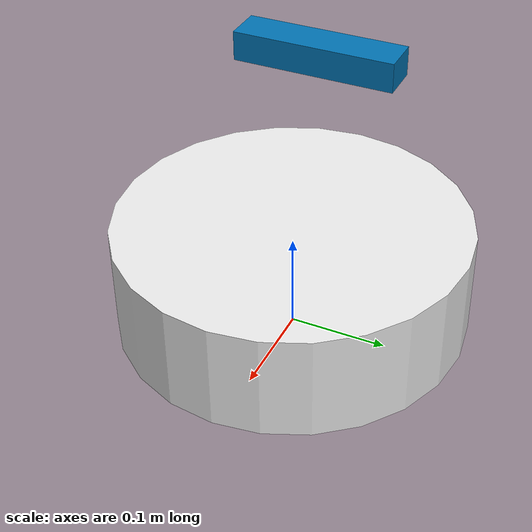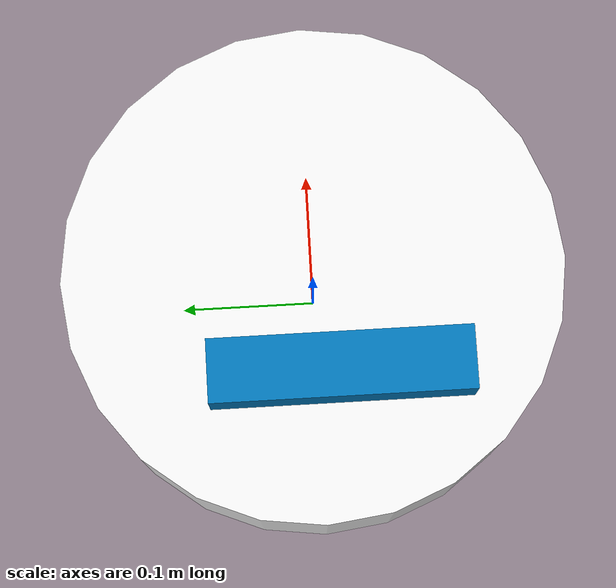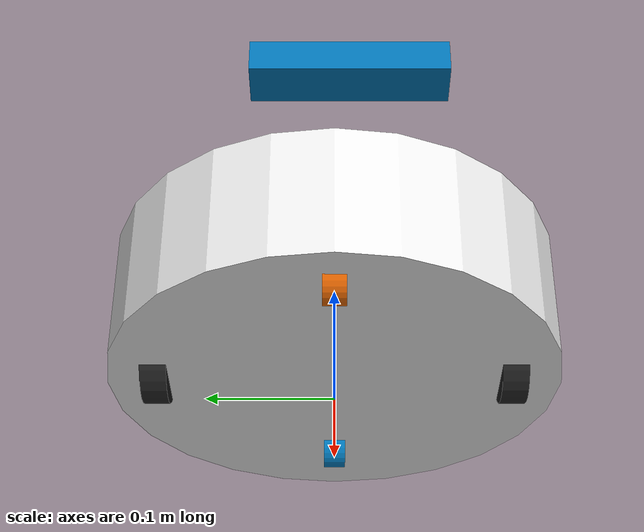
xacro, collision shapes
<?xml version="1.0"?>

<robot name="chefbot" xmlns:xacro="http://ros.org/wiki/xacro">

  <xacro:include filename="$(find chefbot_description)/urdf/common_properties.xacro" />
  <xacro:include filename="$(find chefbot_description)/gazebo/chefbot.gazebo.xacro" />

  <xacro:property name="astra_cam_py" value="-0.0125"/>
  <xacro:property name="astra_depth_rel_rgb_py" value="0.0250" />
  <xacro:property name="astra_cam_rel_rgb_py"   value="-0.0125" />
  <xacro:property name="astra_dae_display_scale"   value="0.8" />

<!-- Defining the fixed base link of the robot -->

<link name="base_footprint"/>

    <joint name="base_joint" type="fixed">
      <origin xyz="0 0 0.0102" rpy="0 0 0" />
      <parent link="base_footprint"/>
      <child link="base_link" />
    </joint>
    <link name="base_link">
      <visual>
        <geometry>
          <!-- new mesh -->
          <mesh filename="package://chefbot_description/meshes/base_plate.dae" />
       <material name="white"/>
        </geometry>

	 <origin xyz="0.001 0 -0.034" rpy="0 0 ${M_PI/2}"/>
      </visual>
      <collision>
        <geometry>
          <cylinder length="0.10938" radius="0.178"/>
        </geometry>
        <origin xyz="0.0 0 0.05949" rpy="0 0 0"/>
      </collision>
      <inertial>
        <!-- COM experimentally determined -->
        <origin xyz="0.01 0 0"/>
        <mass value="2.4"/> <!-- 2.4/2.6 kg for small/big battery pack -->

        <inertia ixx="0.019995" ixy="0.0" ixz="0.0"
                 iyy="0.019995" iyz="0.0"
                 izz="0.03675" />
      </inertial>
    </link>

    <joint name="wheel_left_joint" type="continuous">
      <parent link="base_link"/>
      <child link="chefbot_wheel_left_link"/>
      <origin xyz="0 ${0.28/2} 0.026" rpy="${-M_PI/2} 0 0"/>
      <axis xyz="0 0 1"/>
    </joint>
    <link name="chefbot_wheel_left_link">
      <visual>
        <geometry>
          <mesh filename="package://chefbot_description/meshes/wheel.dae"/>
       <material name="black"/>
        </geometry>
        <origin xyz="0 0 0" rpy="0 0 0"/>
      </visual>
      <collision>
        <geometry>
          <cylinder length="0.0206" radius="0.0352"/>
        </geometry>
        <origin rpy="0 0 0" xyz="0 0 0"/>
      </collision>
      <inertial>
        <mass value="0.01" />
        <origin xyz="0 0 0" />
        <inertia ixx="0.001" ixy="0.0" ixz="0.0"
                 iyy="0.001" iyz="0.0"
                 izz="0.001" />
      </inertial>
    </link>

    <joint name="wheel_right_joint" type="continuous">
      <parent link="base_link"/>
      <child link="chefbot_wheel_right_link"/>
      <origin xyz="0.00 -${0.28/2} 0.026" rpy="${-M_PI/2} 0 0"/>
      <axis xyz="0 0 1"/>
    </joint>
    <link name="chefbot_wheel_right_link">
      <visual>
        <geometry>
          <mesh filename="package://chefbot_description/meshes/wheel.dae"/>
       	<material name="white"/>
        </geometry>
        <origin xyz="0 0 0" rpy="0 0 0"/>
      </visual>
      <collision>
        <geometry>
          <cylinder length="0.0206" radius="0.0350"/>
        </geometry>
        <origin rpy="0 0 0" xyz="0 0 0"/>
      </collision>
      <inertial>
        <mass value="0.01" />
        <origin xyz="0 0 0" />
        <inertia ixx="0.001" ixy="0.0" ixz="0.0"
                 iyy="0.001" iyz="0.0"
                 izz="0.001" />
      </inertial>
    </link>

    <joint name="caster_front_joint" type="fixed">
      <parent link="base_link"/>
      <child link="chefbot_caster_front_link"/>
      <origin xyz="0.115 0.0 0.007" rpy="${-M_PI/2} 0 0"/>
    </joint>
    <link name="chefbot_caster_front_link">
      <collision>
        <geometry>
          <cylinder length="0.0176" radius="0.017"/>
        </geometry>
        <origin rpy="0 0 0" xyz="0 0 0"/>
      </collision>
      <inertial>
        <mass value="0.01" />
        <origin xyz="0 0 0" />
        <inertia ixx="0.001" ixy="0.0" ixz="0.0"
                 iyy="0.001" iyz="0.0"
                 izz="0.001" />
      </inertial>
    </link>

    <joint name="chefbot_caster_back_joint" type="fixed">
      <parent link="base_link"/>
      <child link="chefbot_caster_back_link"/>
      <origin xyz="-0.135 0.0 0.009" rpy="${-M_PI/2} 0 0"/>
    </joint>
    <link name="chefbot_caster_back_link">
      <collision>
        <geometry>
          <cylinder length="0.0176" radius="0.017"/>
        </geometry>
        <origin rpy="0 0 0" xyz="0 0 0"/>
      </collision>
      <inertial>
        <mass value="0.01" />
        <origin xyz="0 0 0" />
        <inertia ixx="0.001" ixy="0.0" ixz="0.0"
                 iyy="0.001" iyz="0.0"
                 izz="0.001" />
      </inertial>
    </link>

    <!-- Chefbot's sensors -->

    <joint name="gyro_joint" type="fixed">
      <axis xyz="0 1 0"/>
      <origin xyz="0.056 0.062 0.0202" rpy="0 0 0"/>
      <parent link="base_link"/>
      <child link="gyro_link"/>
    </joint>
    <link name="gyro_link">
      <inertial>
        <mass value="0.001"/>
        <origin xyz="0 0 0" rpy="0 0 0"/>
        <inertia ixx="0.0001" ixy="0" ixz="0"
                 iyy="0.000001" iyz="0"
                 izz="0.0001"/>
      </inertial>
    </link>

    <joint name="cliff_sensor_left_joint" type="fixed">
      <origin xyz="0.08734 0.13601 0.0214" rpy="0 ${M_PI/2} 0" />
      <parent link="base_link"/>
      <child link="cliff_sensor_left_link" />
    </joint>
    <link name="cliff_sensor_left_link">
      <inertial>
        <mass value="0.0001" />
        <origin xyz="0 0 0" />
        <inertia ixx="0.0001" ixy="0.0" ixz="0.0"
                 iyy="0.0001" iyz="0.0"
                 izz="0.0001" />
      </inertial>
    </link>

    <joint name="cliff_sensor_right_joint" type="fixed">
      <origin xyz="0.085 -0.13601 0.0214" rpy="0 ${M_PI/2} 0" />
      <parent link="base_link"/>
      <child link="cliff_sensor_right_link" />
    </joint>
    <link name="cliff_sensor_right_link">
      <inertial>
        <mass value="0.0001" />
        <origin xyz="0 0 0" />
        <inertia ixx="0.0001" ixy="0.0" ixz="0.0"
                 iyy="0.0001" iyz="0.0"
                 izz="0.0001" />
      </inertial>
    </link>

    <joint name="cliff_sensor_front_joint" type="fixed">
      <origin xyz="0.156 0.00 0.0214" rpy="0 ${M_PI/2} 0" />
      <parent link="base_link"/>
      <child link="cliff_sensor_front_link" />
    </joint>
    <link name="cliff_sensor_front_link">
      <inertial>
        <mass value="0.0001" />
        <origin xyz="0 0 0" />
        <inertia ixx="0.0001" ixy="0.0" ixz="0.0"
                 iyy="0.0001" iyz="0.0"
                 izz="0.0001" />
      </inertial>
    </link>

<!-- Adding Astra -->

    <joint name="camera_rgb_joint" type="fixed">
      <origin xyz="-0.09 0 0.25"
              rpy="0 0 0"/>
      <parent link="base_link"/>
      <child link="camera_rgb_frame" />
    </joint>
    <link name="camera_rgb_frame"/>

    <joint name="camera_rgb_optical_joint" type="fixed">
      <origin xyz="0 0 0" rpy="${-M_PI/2} 0 ${-M_PI/2}" />
      <parent link="camera_rgb_frame" />
      <child link="camera_rgb_optical_frame" />
    </joint>
    <link name="camera_rgb_optical_frame"/>

    <joint name="camera_joint" type="fixed">
      <origin xyz="0 ${astra_cam_rel_rgb_py} 0"
              rpy="0 0 0"/>
      <parent link="camera_rgb_frame"/>
      <child link="camera_link"/>
    </joint>
    <link name="camera_link">
      <visual>
        <origin xyz="-0.04 0.02 -0.01" rpy="${M_PI/2} 0 ${M_PI/2}"/>
        <geometry>
          <mesh filename="package://chefbot_description/meshes/astra.dae" scale="${astra_dae_display_scale} ${astra_dae_display_scale} ${astra_dae_display_scale}"/>
        </geometry>
      </visual>
      <collision>
        <origin xyz="0.0 0.0 0.0" rpy="0 0 0" />
        <geometry>
        <box size="0.0400 0.1650 0.0300"/>
      </geometry>
      </collision>
      <inertial>
        <mass value="0.564" />
        <origin xyz="0 0 0" />
        <inertia ixx="0.003881243" ixy="0.0" ixz="0.0"
                 iyy="0.000498940" iyz="0.0"
                 izz="0.003879257" />
      </inertial>
    </link>

    <joint name="camera_depth_joint" type="fixed">
      <origin xyz="0 ${astra_depth_rel_rgb_py} 0" rpy="0 0 0" />
      <parent link="camera_rgb_frame" />
      <child link="camera_depth_frame" />
    </joint>
    <link name="camera_depth_frame"/>

    <joint name="camera_depth_optical_joint" type="fixed">
      <origin xyz="0 0 0" rpy="${-M_PI/2} 0 ${-M_PI/2}" />
      <parent link="camera_depth_frame" />
      <child link="camera_depth_optical_frame" />
    </joint>
    <link name="camera_depth_optical_frame"/>

</robot>

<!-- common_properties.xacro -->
<!--
  Various useful properties such as constants and materials
 -->
<robot name="chefbot" xmlns:xacro="http://ros.org/wiki/xacro">
  <xacro:property name="M_PI" value="3.1415926535897931" />

  <xacro:property name="material_white">

    <material name="white">
      <color rgba="1 1 1 1"/>
    </material>
  </xacro:property>
  <xacro:property name="material_grey">
    <material name="grey">
      <color rgba="0.5 0.5 0.5 1"/>
    </material>
  </xacro:property>
  <xacro:property name="material_light_grey">
    <material name="light_grey">
      <color rgba="0.6 0.6 0.6 1"/>
    </material>
  </xacro:property>
  <xacro:property name="material_dark_grey">
    <material name="dark_grey">
      <color rgba="0.3 0.3 0.3 1"/>
    </material>
  </xacro:property>
  <xacro:property name="material_black">
    <material name="black">
      <color rgba="0.1 0.1 0.1 1"/>
    </material>
  </xacro:property>
  <xacro:property name="material_red">
    <material name="red">
      <color rgba="1 0 0 1"/>
    </material>
  </xacro:property>
  <xacro:property name="material_green">
    <material name="green">
      <color rgba="0.0 0.8 0.0 1"/>
    </material>
  </xacro:property>
  <xacro:property name="material_blue">
    <material name="blue">
      <color rgba="0.0 0.0 1.0 1"/>
    </material>
  </xacro:property>
  <xacro:property name="material_grey_blue">
    <material name="grey_blue">
      <color rgba="0.4 0.4 1.0 1"/>
    </material>
  </xacro:property>
  <xacro:property name="material_orange">
    <material name="orange">
      <color rgba="1.0 0.7 0.0 1"/>
    </material>
  </xacro:property>
</robot>

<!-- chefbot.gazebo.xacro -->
<robot name="chefbot" xmlns:xacro="http://ros.org/wiki/xacro">

	<material name="blue">
	    <color rgba="0 0 0.8 1"/>
	</material>

	<material name="white">
	    <color rgba="1 1 1 1"/>
	</material>

	<material name="yellow">
	    <color rgba="1 0.8 0.3 0.7"/>
	</material>

	<material name="gray">
	    <color rgba="0.7 0.7 0.7 1.0"/>
	</material>

	<material name="darkgray">
	   <color rgba="0.3 0.3 0.3 1.0"/>
	</material>

	  <gazebo reference="chefbot_wheel_left_link">
	    <mu1>1.0</mu1>
	    <mu2>1.0</mu2>
	    <kp>1000000.0</kp>
	    <kd>100.0</kd>
	    <minDepth>0.001</minDepth>
	    <maxVel>1.0</maxVel>

	  </gazebo>

	  <gazebo reference="chefbot_wheel_right_link">
	    <mu1>1.0</mu1>
	    <mu2>1.0</mu2>
	    <kp>1000000.0</kp>
	    <kd>100.0</kd>
	    <minDepth>0.001</minDepth>
	    <maxVel>1.0</maxVel>

	  </gazebo>

	  <gazebo reference="chefbot_caster_front_link">
	    <mu1>0.0</mu1>
	    <mu2>0.0</mu2>
	    <kp>1000000.0</kp>
	    <kd>100.0</kd>
	    <minDepth>0.001</minDepth>
	    <maxVel>1.0</maxVel>

	  </gazebo>

	  <gazebo reference="chefbot_caster_back_link">
	    <mu1>0.0</mu1>
	    <mu2>0.0</mu2>
	    <kp>1000000.0</kp>
	    <kd>100.0</kd>
	    <minDepth>0.001</minDepth>
	    <maxVel>1.0</maxVel>

	  </gazebo>

	  <gazebo reference="base_link">
	    <mu1>0.3</mu1>
	    <mu2>0.3</mu2>
	    <sensor type="contact" name="bumpers">
	      <always_on>1</always_on>
	      <update_rate>50.0</update_rate>
	      <visualize>true</visualize>
	      <contact>
	        <collision>base_footprint_collision_base_link</collision>
	      </contact>
	    </sensor>
	  </gazebo>

	<gazebo reference="chefbot_wheel_left_link">
	  <material>Gazebo/Black</material>
	</gazebo>

	<gazebo reference="chefbot_wheel_right_link">
	  <material>Gazebo/Black</material>
	</gazebo>

	<gazebo reference="base_link">
	  <material>Gazebo/White</material>
	</gazebo>

	  <gazebo reference="base_link">
	    <mu1>0.3</mu1>
	    <mu2>0.3</mu2>
	    <sensor type="contact" name="bumpers">
	      <always_on>1</always_on>
	      <update_rate>50.0</update_rate>
	      <visualize>true</visualize>
	      <contact>
	        <collision>base_footprint_collision_base_link</collision>
	      </contact>
	    </sensor>
	  </gazebo>

	  <gazebo reference="cliff_sensor_left_link">
	    <sensor type="ray" name="cliff_sensor_left">
	      <always_on>true</always_on>
	      <update_rate>50</update_rate>
	      <visualize>true</visualize>
	      <ray>
	        <scan>
	          <horizontal>
	            <samples>50</samples>
	            <resolution>1.0</resolution>
	            <min_angle>-0.0436</min_angle>  <!-- -2.5 degree -->
	            <max_angle>0.0436</max_angle> <!-- 2.5 degree -->
	          </horizontal>

	        </scan>
	        <range>
	          <min>0.01</min>
	          <max>0.15</max>
	          <resolution>1.0</resolution>
	        </range>
	      </ray>
	    </sensor>
	  </gazebo>

	  <gazebo reference="cliff_sensor_right_link">
	    <sensor type="ray" name="cliff_sensor_right">
	      <always_on>true</always_on>
	      <update_rate>50</update_rate>
	      <visualize>true</visualize>
	      <ray>
	        <scan>
	          <horizontal>
	            <samples>50</samples>
	            <resolution>1.0</resolution>
	            <min_angle>-0.0436</min_angle>  <!-- -2.5 degree -->
	            <max_angle>0.0436</max_angle> <!-- 2.5 degree -->
	          </horizontal>

	        </scan>
	        <range>
	          <min>0.01</min>
	          <max>0.15</max>
	          <resolution>1.0</resolution>
	        </range>
	      </ray>
	    </sensor>
	  </gazebo>

	  <gazebo reference="cliff_sensor_front_link">
	    <sensor type="ray" name="cliff_sensor_front">
	      <always_on>true</always_on>
	      <update_rate>50</update_rate>
	      <visualize>true</visualize>
	      <ray>
	        <scan>
	          <horizontal>
	            <samples>50</samples>
	            <resolution>1.0</resolution>
	            <min_angle>-0.0436</min_angle>  <!-- -2.5 degree -->
	            <max_angle>0.0436</max_angle> <!-- 2.5 degree -->
	          </horizontal>

	        </scan>
	        <range>
	          <min>0.01</min>
	          <max>0.15</max>
	          <resolution>1.0</resolution>
	        </range>
	      </ray>
	    </sensor>
	  </gazebo>

	  <gazebo reference="gyro_link">
	   <sensor type="imu" name="imu">
        <always_on>true</always_on>
        <update_rate>50</update_rate>
        <visualize>false</visualize>
        <imu>
          <noise>
            <type>gaussian</type>
	          <rate>
	            <mean>0.0</mean>
	            <stddev>${0.0014*0.0014}</stddev> <!-- 0.25 x 0.25 (deg/s) -->
	            <bias_mean>0.0</bias_mean>
	            <bias_stddev>0.0</bias_stddev>
	          </rate>
		        <accel> <!-- not used in the plugin and real robot, hence using tutorial values -->
			        <mean>0.0</mean>
			        <stddev>1.7e-2</stddev>
			        <bias_mean>0.1</bias_mean>
			        <bias_stddev>0.001</bias_stddev>
		        </accel>
          </noise>
	      </imu>
      		</sensor>
	  </gazebo>

	  <gazebo>
	    <plugin name="kobuki_controller" filename="libgazebo_ros_kobuki.so">
	      <publish_tf>1</publish_tf>
	      <left_wheel_joint_name>wheel_left_joint</left_wheel_joint_name>
	      <right_wheel_joint_name>wheel_right_joint</right_wheel_joint_name>
	      <wheel_separation>.30</wheel_separation>
	      <wheel_diameter>0.09</wheel_diameter>
	      <torque>18.0</torque>
	      <velocity_command_timeout>0.6</velocity_command_timeout>
	      <cliff_detection_threshold>0.04</cliff_detection_threshold>
	      <cliff_sensor_left_name>cliff_sensor_left</cliff_sensor_left_name>
	      <cliff_sensor_center_name>cliff_sensor_front</cliff_sensor_center_name>
	      <cliff_sensor_right_name>cliff_sensor_right</cliff_sensor_right_name>
	      <cliff_detection_threshold>0.04</cliff_detection_threshold>
	      <bumper_name>bumpers</bumper_name>

        	<imu_name>imu</imu_name>
	    </plugin>
	  </gazebo>

    <gazebo reference="camera_link">
      <sensor type="depth" name="camera">
        <always_on>true</always_on>
        <update_rate>20.0</update_rate>
        <camera>
          <horizontal_fov>${60.0*M_PI/180.0}</horizontal_fov>
          <image>
            <format>B8G8R8</format>
            <width>640</width>
            <height>480</height>
          </image>
          <clip>
            <near>0.05</near>
            <far>8.0</far>
          </clip>
        </camera>
        <plugin name="kinect_camera_controller" filename="libgazebo_ros_openni_kinect.so">
          <cameraName>camera</cameraName>
          <alwaysOn>true</alwaysOn>
          <updateRate>10</updateRate>
          <imageTopicName>rgb/image_raw</imageTopicName>
          <depthImageTopicName>depth/image_raw</depthImageTopicName>
          <pointCloudTopicName>depth/points</pointCloudTopicName>
          <cameraInfoTopicName>rgb/camera_info</cameraInfoTopicName>
          <depthImageCameraInfoTopicName>depth/camera_info</depthImageCameraInfoTopicName>
          <frameName>camera_depth_optical_frame</frameName>
          <baseline>0.1</baseline>
          <distortion_k1>0.0</distortion_k1>
          <distortion_k2>0.0</distortion_k2>
          <distortion_k3>0.0</distortion_k3>
          <distortion_t1>0.0</distortion_t1>
          <distortion_t2>0.0</distortion_t2>
          <pointCloudCutoff>0.4</pointCloudCutoff>
        </plugin>
      </sensor>
    </gazebo>

</robot>
